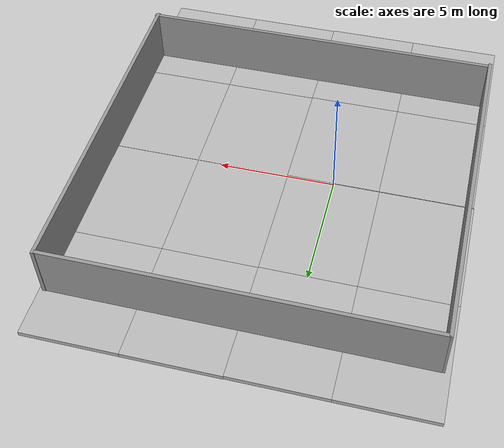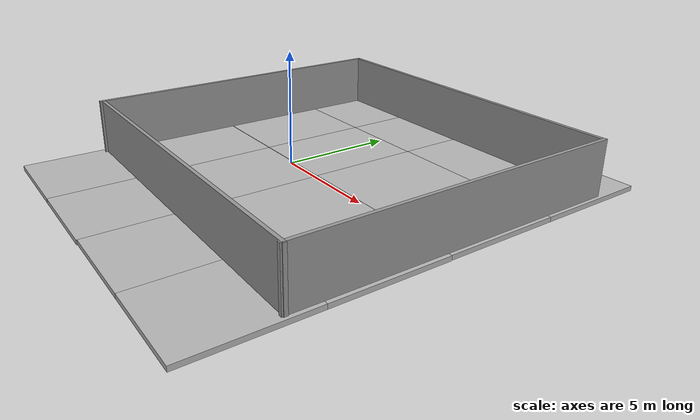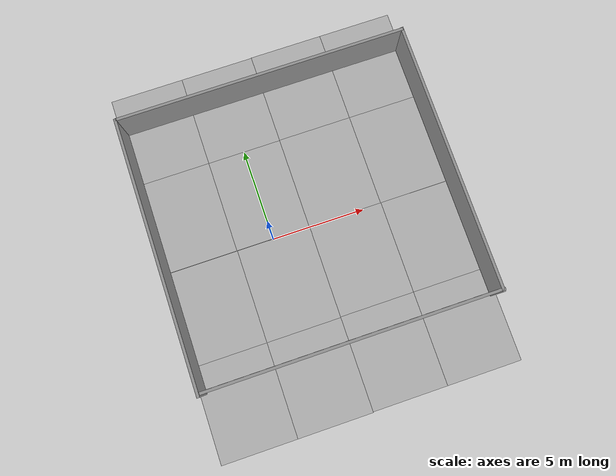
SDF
<sdf version="1.7">
 <world name="default">
  <light name="sun" type="directional">
   <pose>0 0 10 0 -0 0</pose>
   <diffuse>0.8 0.8 0.8 1</diffuse>
   <specular>0.2 0.2 0.2 1</specular>
   <attenuation>
    <range>1000</range>
    <constant>0.9</constant>
    <linear>0.01</linear>
    <quadratic>0.001</quadratic>
   </attenuation>
   <direction>-0.5 0.1 -0.9</direction>
   <spot><inner_angle>0</inner_angle><outer_angle>0</outer_angle><falloff>0</falloff></spot>
  </light>
  <gravity>0 0 -9.8</gravity>
  <magnetic_field>6e-06 2.3e-05 -4.2e-05</magnetic_field>
  <atmosphere type="adiabatic"/>
  <physics type="ode">
   <max_step_size>0.001</max_step_size>
   <real_time_factor>1</real_time_factor>
   <real_time_update_rate>1000</real_time_update_rate>
  </physics>
  <scene><ambient>0.4 0.4 0.4 1</ambient><background>0.7 0.7 0.7 1</background><shadows>1</shadows></scene>
  <audio><device>default</device></audio>
  <spherical_coordinates>
   <surface_model>EARTH_WGS84</surface_model>
   <latitude_deg>0</latitude_deg>
   <longitude_deg>0</longitude_deg>
   <elevation>0</elevation>
   <heading_deg>0</heading_deg>
  </spherical_coordinates>
  <model name="mud_box_0">
   <link name="link">
    <visual name="visual_1">
     <pose>-2 2.5 0 0 -0 0</pose>
     <cast_shadows>0</cast_shadows>
     <geometry><box><size>4 5 0.2</size></box></geometry>
     <material>
      <script>
       <uri>model://mud_box/materials/scripts</uri>
       <uri>model://mud_box/materials/textures</uri>
       <name>vrc/mud</name>
      </script>
      <shader type="pixel"/>
     </material>
    </visual>
    <visual name="visual_2">
     <pose>2 2.5 0 0 -0 0</pose>
     <cast_shadows>0</cast_shadows>
     <geometry><box><size>4 5 0.2</size></box></geometry>
     <material>
      <script>
       <uri>model://mud_box/materials/scripts</uri>
       <uri>model://mud_box/materials/textures</uri>
       <name>vrc/mud</name>
      </script>
      <shader type="pixel"/>
     </material>
    </visual>
    <visual name="visual_4">
     <pose>-2 -2.5 0 0 -0 0</pose>
     <cast_shadows>0</cast_shadows>
     <geometry><box><size>4 5 0.2</size></box></geometry>
     <material>
      <script>
       <uri>model://mud_box/materials/scripts</uri>
       <uri>model://mud_box/materials/textures</uri>
       <name>vrc/mud</name>
      </script>
      <shader type="pixel"/>
     </material>
    </visual>
    <visual name="visual_3">
     <pose>2 -2.5 0 0 -0 0</pose>
     <cast_shadows>0</cast_shadows>
     <geometry><box><size>4 5 0.2</size></box></geometry>
     <material>
      <script>
       <uri>model://mud_box/materials/scripts</uri>
       <uri>model://mud_box/materials/textures</uri>
       <name>vrc/mud</name>
      </script>
      <shader type="pixel"/>
     </material>
    </visual>
    <collision name="collision">
     <geometry><box><size>8 10 0.2</size></box></geometry>
     <surface>
      <friction>
       <ode><mu>1</mu><mu2>1</mu2><fdir1>0 0 0</fdir1><slip1>0</slip1><slip2>0</slip2></ode>
       <torsional>
        <coefficient>1</coefficient>
        <patch_radius>0</patch_radius>
        <surface_radius>0</surface_radius>
        <use_patch_radius>1</use_patch_radius>
        <ode><slip>0</slip></ode>
       </torsional>
      </friction>
      <bounce><restitution_coefficient>0</restitution_coefficient><threshold>1e+06</threshold></bounce>
      <contact>
       <collide_without_contact>0</collide_without_contact>
       <collide_without_contact_bitmask>1</collide_without_contact_bitmask>
       <collide_bitmask>1</collide_bitmask>
       <ode>
        <soft_cfm>0</soft_cfm>
        <soft_erp>0.2</soft_erp>
        <kp>1e+13</kp>
        <kd>1</kd>
        <max_vel>0.01</max_vel>
        <min_depth>0</min_depth>
       </ode>
       <bullet>
        <split_impulse>1</split_impulse>
        <split_impulse_penetration_threshold>-0.01</split_impulse_penetration_threshold>
        <soft_cfm>0</soft_cfm>
        <soft_erp>0.2</soft_erp>
        <kp>1e+13</kp>
        <kd>1</kd>
       </bullet>
      </contact>
     </surface>
    </collision>
   </link>
   <static>1</static>
   <pose>-1.9955 5.01712 0 0 -0 0</pose>
  </model>
  <model name="mud_box_1">
   <link name="link">
    <visual name="visual_1">
     <pose>-2 2.5 0 0 -0 0</pose>
     <cast_shadows>0</cast_shadows>
     <geometry><box><size>4 5 0.2</size></box></geometry>
     <material>
      <script>
       <uri>model://mud_box/materials/scripts</uri>
       <uri>model://mud_box/materials/textures</uri>
       <name>vrc/mud</name>
      </script>
      <shader type="pixel"/>
     </material>
    </visual>
    <visual name="visual_2">
     <pose>2 2.5 0 0 -0 0</pose>
     <cast_shadows>0</cast_shadows>
     <geometry><box><size>4 5 0.2</size></box></geometry>
     <material>
      <script>
       <uri>model://mud_box/materials/scripts</uri>
       <uri>model://mud_box/materials/textures</uri>
       <name>vrc/mud</name>
      </script>
      <shader type="pixel"/>
     </material>
    </visual>
    <visual name="visual_4">
     <pose>-2 -2.5 0 0 -0 0</pose>
     <cast_shadows>0</cast_shadows>
     <geometry><box><size>4 5 0.2</size></box></geometry>
     <material>
      <script>
       <uri>model://mud_box/materials/scripts</uri>
       <uri>model://mud_box/materials/textures</uri>
       <name>vrc/mud</name>
      </script>
      <shader type="pixel"/>
     </material>
    </visual>
    <visual name="visual_3">
     <pose>2 -2.5 0 0 -0 0</pose>
     <cast_shadows>0</cast_shadows>
     <geometry><box><size>4 5 0.2</size></box></geometry>
     <material>
      <script>
       <uri>model://mud_box/materials/scripts</uri>
       <uri>model://mud_box/materials/textures</uri>
       <name>vrc/mud</name>
      </script>
      <shader type="pixel"/>
     </material>
    </visual>
    <collision name="collision">
     <geometry><box><size>8 10 0.2</size></box></geometry>
     <surface>
      <friction>
       <ode><mu>1</mu><mu2>1</mu2><fdir1>0 0 0</fdir1><slip1>0</slip1><slip2>0</slip2></ode>
       <torsional>
        <coefficient>1</coefficient>
        <patch_radius>0</patch_radius>
        <surface_radius>0</surface_radius>
        <use_patch_radius>1</use_patch_radius>
        <ode><slip>0</slip></ode>
       </torsional>
      </friction>
      <bounce><restitution_coefficient>0</restitution_coefficient><threshold>1e+06</threshold></bounce>
      <contact>
       <collide_without_contact>0</collide_without_contact>
       <collide_without_contact_bitmask>1</collide_without_contact_bitmask>
       <collide_bitmask>1</collide_bitmask>
       <ode>
        <soft_cfm>0</soft_cfm>
        <soft_erp>0.2</soft_erp>
        <kp>1e+13</kp>
        <kd>1</kd>
        <max_vel>0.01</max_vel>
        <min_depth>0</min_depth>
       </ode>
       <bullet>
        <split_impulse>1</split_impulse>
        <split_impulse_penetration_threshold>-0.01</split_impulse_penetration_threshold>
        <soft_cfm>0</soft_cfm>
        <soft_erp>0.2</soft_erp>
        <kp>1e+13</kp>
        <kd>1</kd>
       </bullet>
      </contact>
     </surface>
    </collision>
   </link>
   <static>1</static>
   <pose>6.02276 -4.96914 0 0 -0 0</pose>
  </model>
  <model name="mud_box_2">
   <static>1</static>
   <link name="link">
    <collision name="collision"><geometry><box><size>8 10 0.2</size></box></geometry></collision>
    <visual name="visual_1">
     <pose>-2 2.5 0 0 -0 0</pose>
     <cast_shadows>0</cast_shadows>
     <geometry><box><size>4 5 0.2</size></box></geometry>
     <material>
      <script>
       <uri>model://mud_box/materials/scripts</uri>
       <uri>model://mud_box/materials/textures</uri>
       <name>vrc/mud</name>
      </script>
     </material>
    </visual>
    <visual name="visual_2">
     <pose>2 2.5 0 0 -0 0</pose>
     <cast_shadows>0</cast_shadows>
     <geometry><box><size>4 5 0.2</size></box></geometry>
     <material>
      <script>
       <uri>model://mud_box/materials/scripts</uri>
       <uri>model://mud_box/materials/textures</uri>
       <name>vrc/mud</name>
      </script>
     </material>
    </visual>
    <visual name="visual_3">
     <pose>2 -2.5 0 0 -0 0</pose>
     <cast_shadows>0</cast_shadows>
     <geometry><box><size>4 5 0.2</size></box></geometry>
     <material>
      <script>
       <uri>model://mud_box/materials/scripts</uri>
       <uri>model://mud_box/materials/textures</uri>
       <name>vrc/mud</name>
      </script>
     </material>
    </visual>
    <visual name="visual_4">
     <pose>-2 -2.5 0 0 -0 0</pose>
     <cast_shadows>0</cast_shadows>
     <geometry><box><size>4 5 0.2</size></box></geometry>
     <material>
      <script>
       <uri>model://mud_box/materials/scripts</uri>
       <uri>model://mud_box/materials/textures</uri>
       <name>vrc/mud</name>
      </script>
     </material>
    </visual>
   </link>
   <pose>-1.97253 -5.00252 0 0 -0 0</pose>
  </model>
  <model name="Wall_horizontal_clone_0">
   <link name="Wall_4">
    <pose>2.358 0 0 0 -0 1.5708</pose>
    <inertial>
     <mass>1</mass>
     <inertia><ixx>1</ixx><ixy>0</ixy><ixz>0</ixz><iyy>1</iyy><iyz>0</iyz><izz>1</izz></inertia>
    </inertial>
    <visual name="Wall_4_Visual">
     <pose>0 0 1.25 0 -0 0</pose>
     <geometry><box><size>14.5 0.15 2.5</size></box></geometry>
     <material>
      <script><uri>file://media/materials/scripts/gazebo.material</uri><name>Gazebo/Grey</name></script>
      <ambient>1 1 1 1</ambient>
      <shader type="pixel"><normal_map>__default__</normal_map></shader>
      <diffuse>0.7 0.7 0.7 1</diffuse>
      <specular>0.01 0.01 0.01 1</specular>
      <emissive>0 0 0 1</emissive>
     </material>
     <meta><layer>0</layer></meta>
    </visual>
    <collision name="Wall_4_Collision">
     <pose>0 0 1.25 0 -0 0</pose>
     <geometry><box><size>9.75 0.15 2.5</size></box></geometry>
     <surface>
      <friction>
       <ode><mu>1</mu><mu2>1</mu2><fdir1>0 0 0</fdir1><slip1>0</slip1><slip2>0</slip2></ode>
       <torsional>
        <coefficient>1</coefficient>
        <patch_radius>0</patch_radius>
        <surface_radius>0</surface_radius>
        <use_patch_radius>1</use_patch_radius>
        <ode><slip>0</slip></ode>
       </torsional>
      </friction>
      <bounce><restitution_coefficient>0</restitution_coefficient><threshold>1e+06</threshold></bounce>
      <contact>
       <collide_without_contact>0</collide_without_contact>
       <collide_without_contact_bitmask>1</collide_without_contact_bitmask>
       <collide_bitmask>1</collide_bitmask>
       <ode>
        <soft_cfm>0</soft_cfm>
        <soft_erp>0.2</soft_erp>
        <kp>1e+13</kp>
        <kd>1</kd>
        <max_vel>0.01</max_vel>
        <min_depth>0</min_depth>
       </ode>
       <bullet>
        <split_impulse>1</split_impulse>
        <split_impulse_penetration_threshold>-0.01</split_impulse_penetration_threshold>
        <soft_cfm>0</soft_cfm>
        <soft_erp>0.2</soft_erp>
        <kp>1e+13</kp>
        <kd>1</kd>
       </bullet>
      </contact>
     </surface>
    </collision>
   </link>
   <static>1</static>
   <pose>7.42689 0.799836 0 0 -0 0</pose>
  </model>
  <model name="Wall_vertical_clone_clone">
   <link name="Wall_0">
    <pose>0 -1.2275 0 0 -0 0</pose>
    <inertial>
     <mass>1</mass>
     <inertia><ixx>1</ixx><ixy>0</ixy><ixz>0</ixz><iyy>1</iyy><iyz>0</iyz><izz>1</izz></inertia>
    </inertial>
    <visual name="Wall_0_Visual">
     <pose>0 0 1.25 0 -0 0</pose>
     <geometry><box><size>15.5 0.15 2.5</size></box></geometry>
     <material>
      <script><uri>file://media/materials/scripts/gazebo.material</uri><name>Gazebo/Grey</name></script>
      <ambient>1 1 1 1</ambient>
      <shader type="pixel"><normal_map>__default__</normal_map></shader>
      <diffuse>0.7 0.7 0.7 1</diffuse>
      <specular>0.01 0.01 0.01 1</specular>
      <emissive>0 0 0 1</emissive>
     </material>
     <meta><layer>0</layer></meta>
    </visual>
    <collision name="Wall_0_Collision">
     <pose>0 0 1.25 0 -0 0</pose>
     <geometry><box><size>20 0.15 2.5</size></box></geometry>
     <surface>
      <friction>
       <ode><mu>1</mu><mu2>1</mu2><fdir1>0 0 0</fdir1><slip1>0</slip1><slip2>0</slip2></ode>
       <torsional>
        <coefficient>1</coefficient>
        <patch_radius>0</patch_radius>
        <surface_radius>0</surface_radius>
        <use_patch_radius>1</use_patch_radius>
        <ode><slip>0</slip></ode>
       </torsional>
      </friction>
      <bounce><restitution_coefficient>0</restitution_coefficient><threshold>1e+06</threshold></bounce>
      <contact>
       <collide_without_contact>0</collide_without_contact>
       <collide_without_contact_bitmask>1</collide_without_contact_bitmask>
       <collide_bitmask>1</collide_bitmask>
       <ode>
        <soft_cfm>0</soft_cfm>
        <soft_erp>0.2</soft_erp>
        <kp>1e+13</kp>
        <kd>1</kd>
        <max_vel>0.01</max_vel>
        <min_depth>0</min_depth>
       </ode>
       <bullet>
        <split_impulse>1</split_impulse>
        <split_impulse_penetration_threshold>-0.01</split_impulse_penetration_threshold>
        <soft_cfm>0</soft_cfm>
        <soft_erp>0.2</soft_erp>
        <kp>1e+13</kp>
        <kd>1</kd>
       </bullet>
      </contact>
     </surface>
    </collision>
   </link>
   <static>1</static>
   <pose>2.08006 9.18229 0 0 -0 0</pose>
  </model>
  <model name="Wall_vertical_clone_0">
   <link name="Wall_0">
    <pose>0 -1.2275 0 0 -0 0</pose>
    <inertial>
     <mass>1</mass>
     <inertia><ixx>1</ixx><ixy>0</ixy><ixz>0</ixz><iyy>1</iyy><iyz>0</iyz><izz>1</izz></inertia>
    </inertial>
    <visual name="Wall_0_Visual">
     <pose>0 0 1.25 0 -0 0</pose>
     <geometry><box><size>15.5 0.15 2.5</size></box></geometry>
     <material>
      <script><uri>file://media/materials/scripts/gazebo.material</uri><name>Gazebo/Grey</name></script>
      <ambient>1 1 1 1</ambient>
      <shader type="pixel"><normal_map>__default__</normal_map></shader>
      <diffuse>0.7 0.7 0.7 1</diffuse>
      <specular>0.01 0.01 0.01 1</specular>
      <emissive>0 0 0 1</emissive>
     </material>
     <meta><layer>0</layer></meta>
    </visual>
    <collision name="Wall_0_Collision">
     <pose>0 0 1.25 0 -0 0</pose>
     <geometry><box><size>20 0.15 2.5</size></box></geometry>
     <surface>
      <friction>
       <ode><mu>1</mu><mu2>1</mu2><fdir1>0 0 0</fdir1><slip1>0</slip1><slip2>0</slip2></ode>
       <torsional>
        <coefficient>1</coefficient>
        <patch_radius>0</patch_radius>
        <surface_radius>0</surface_radius>
        <use_patch_radius>1</use_patch_radius>
        <ode><slip>0</slip></ode>
       </torsional>
      </friction>
      <bounce><restitution_coefficient>0</restitution_coefficient><threshold>1e+06</threshold></bounce>
      <contact>
       <collide_without_contact>0</collide_without_contact>
       <collide_without_contact_bitmask>1</collide_without_contact_bitmask>
       <collide_bitmask>1</collide_bitmask>
       <ode>
        <soft_cfm>0</soft_cfm>
        <soft_erp>0.2</soft_erp>
        <kp>1e+13</kp>
        <kd>1</kd>
        <max_vel>0.01</max_vel>
        <min_depth>0</min_depth>
       </ode>
       <bullet>
        <split_impulse>1</split_impulse>
        <split_impulse_penetration_threshold>-0.01</split_impulse_penetration_threshold>
        <soft_cfm>0</soft_cfm>
        <soft_erp>0.2</soft_erp>
        <kp>1e+13</kp>
        <kd>1</kd>
       </bullet>
      </contact>
     </surface>
    </collision>
   </link>
   <static>1</static>
   <pose>2.14757 -5.08566 0 0 -0 0</pose>
  </model>
  <model name="mud_box">
   <link name="link">
    <visual name="visual_1">
     <pose>-2 2.5 0 0 -0 0</pose>
     <cast_shadows>0</cast_shadows>
     <geometry><box><size>4 5 0.2</size></box></geometry>
     <material>
      <script>
       <uri>model://mud_box/materials/scripts</uri>
       <uri>model://mud_box/materials/textures</uri>
       <name>vrc/mud</name>
      </script>
      <shader type="pixel"/>
     </material>
    </visual>
    <visual name="visual_2">
     <pose>2 2.5 0 0 -0 0</pose>
     <cast_shadows>0</cast_shadows>
     <geometry><box><size>4 5 0.2</size></box></geometry>
     <material>
      <script>
       <uri>model://mud_box/materials/scripts</uri>
       <uri>model://mud_box/materials/textures</uri>
       <name>vrc/mud</name>
      </script>
      <shader type="pixel"/>
     </material>
    </visual>
    <visual name="visual_4">
     <pose>-2 -2.5 0 0 -0 0</pose>
     <cast_shadows>0</cast_shadows>
     <geometry><box><size>4 5 0.2</size></box></geometry>
     <material>
      <script>
       <uri>model://mud_box/materials/scripts</uri>
       <uri>model://mud_box/materials/textures</uri>
       <name>vrc/mud</name>
      </script>
      <shader type="pixel"/>
     </material>
    </visual>
    <visual name="visual_3">
     <pose>2 -2.5 0 0 -0 0</pose>
     <cast_shadows>0</cast_shadows>
     <geometry><box><size>4 5 0.2</size></box></geometry>
     <material>
      <script>
       <uri>model://mud_box/materials/scripts</uri>
       <uri>model://mud_box/materials/textures</uri>
       <name>vrc/mud</name>
      </script>
      <shader type="pixel"/>
     </material>
    </visual>
    <collision name="collision">
     <geometry><box><size>8 10 0.2</size></box></geometry>
     <surface>
      <friction>
       <ode><mu>1</mu><mu2>1</mu2><fdir1>0 0 0</fdir1><slip1>0</slip1><slip2>0</slip2></ode>
       <torsional>
        <coefficient>1</coefficient>
        <patch_radius>0</patch_radius>
        <surface_radius>0</surface_radius>
        <use_patch_radius>1</use_patch_radius>
        <ode><slip>0</slip></ode>
       </torsional>
      </friction>
      <bounce><restitution_coefficient>0</restitution_coefficient><threshold>1e+06</threshold></bounce>
      <contact>
       <collide_without_contact>0</collide_without_contact>
       <collide_without_contact_bitmask>1</collide_without_contact_bitmask>
       <collide_bitmask>1</collide_bitmask>
       <ode>
        <soft_cfm>0</soft_cfm>
        <soft_erp>0.2</soft_erp>
        <kp>1e+13</kp>
        <kd>1</kd>
        <max_vel>0.01</max_vel>
        <min_depth>0</min_depth>
       </ode>
       <bullet>
        <split_impulse>1</split_impulse>
        <split_impulse_penetration_threshold>-0.01</split_impulse_penetration_threshold>
        <soft_cfm>0</soft_cfm>
        <soft_erp>0.2</soft_erp>
        <kp>1e+13</kp>
        <kd>1</kd>
       </bullet>
      </contact>
     </surface>
    </collision>
   </link>
   <static>1</static>
   <pose>6.00293 5.03473 0 0 -0 0</pose>
  </model>
  <model name="Wall_horizontal_clone_1_clone">
   <link name="Wall_4">
    <pose>2.358 0 0 0 -0 1.5708</pose>
    <inertial>
     <mass>1</mass>
     <inertia><ixx>1</ixx><ixy>0</ixy><ixz>0</ixz><iyy>1</iyy><iyz>0</iyz><izz>1</izz></inertia>
    </inertial>
    <visual name="Wall_4_Visual">
     <pose>0 0 1.25 0 -0 0</pose>
     <geometry><box><size>14.5 0.15 2.5</size></box></geometry>
     <material>
      <script><uri>file://media/materials/scripts/gazebo.material</uri><name>Gazebo/Grey</name></script>
      <ambient>1 1 1 1</ambient>
      <shader type="pixel"><normal_map>__default__</normal_map></shader>
      <diffuse>0.7 0.7 0.7 1</diffuse>
      <specular>0.01 0.01 0.01 1</specular>
      <emissive>0 0 0 1</emissive>
     </material>
     <meta><layer>0</layer></meta>
    </visual>
    <collision name="Wall_4_Collision">
     <pose>0 0 1.25 0 -0 0</pose>
     <geometry><box><size>9.75 0.15 2.5</size></box></geometry>
     <surface>
      <friction>
       <ode><mu>1</mu><mu2>1</mu2><fdir1>0 0 0</fdir1><slip1>0</slip1><slip2>0</slip2></ode>
       <torsional>
        <coefficient>1</coefficient>
        <patch_radius>0</patch_radius>
        <surface_radius>0</surface_radius>
        <use_patch_radius>1</use_patch_radius>
        <ode><slip>0</slip></ode>
       </torsional>
      </friction>
      <bounce><restitution_coefficient>0</restitution_coefficient><threshold>1e+06</threshold></bounce>
      <contact>
       <collide_without_contact>0</collide_without_contact>
       <collide_without_contact_bitmask>1</collide_without_contact_bitmask>
       <collide_bitmask>1</collide_bitmask>
       <ode>
        <soft_cfm>0</soft_cfm>
        <soft_erp>0.2</soft_erp>
        <kp>1e+13</kp>
        <kd>1</kd>
        <max_vel>0.01</max_vel>
        <min_depth>0</min_depth>
       </ode>
       <bullet>
        <split_impulse>1</split_impulse>
        <split_impulse_penetration_threshold>-0.01</split_impulse_penetration_threshold>
        <soft_cfm>0</soft_cfm>
        <soft_erp>0.2</soft_erp>
        <kp>1e+13</kp>
        <kd>1</kd>
       </bullet>
      </contact>
     </surface>
    </collision>
   </link>
   <static>1</static>
   <pose>-8.05015 0.767985 0 0 -0 0</pose>
  </model>
 </world>
</sdf>
